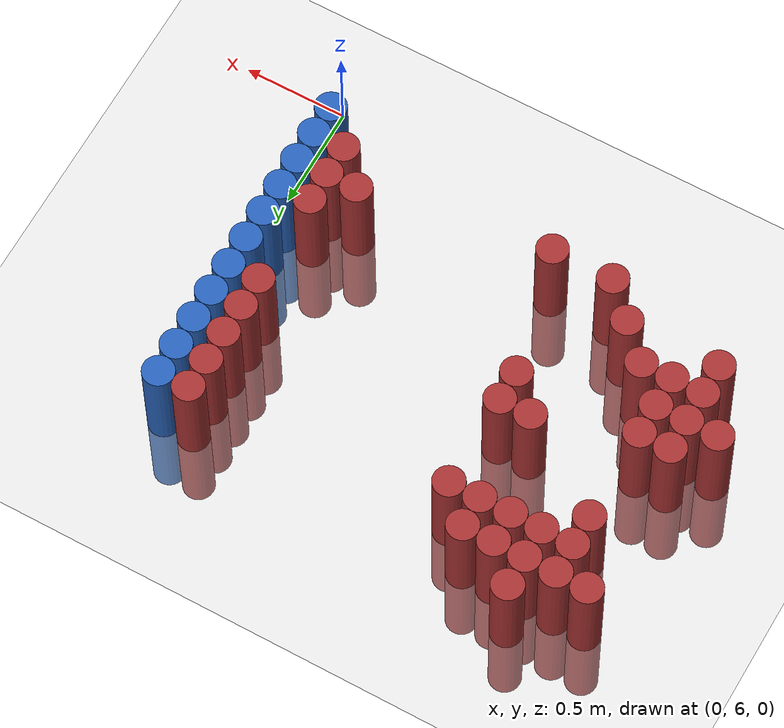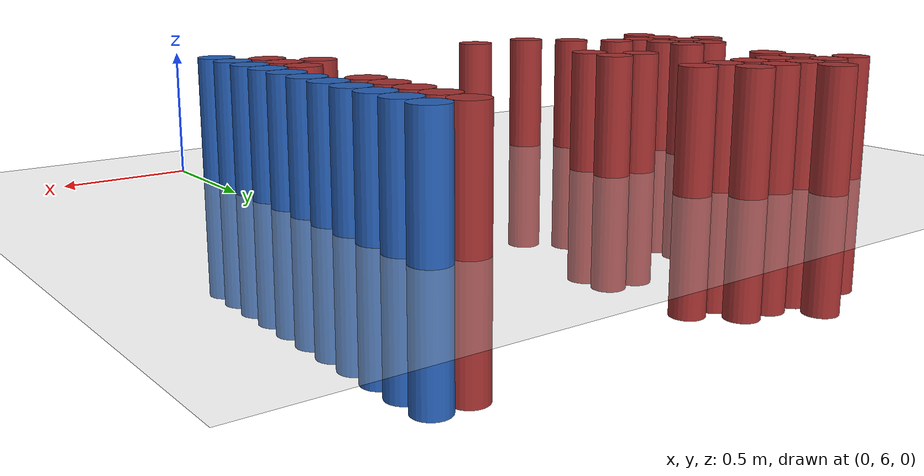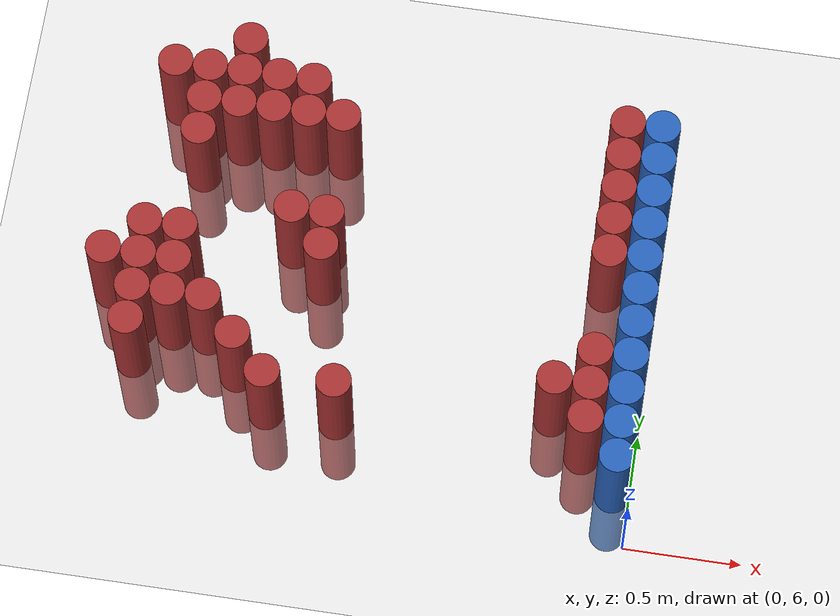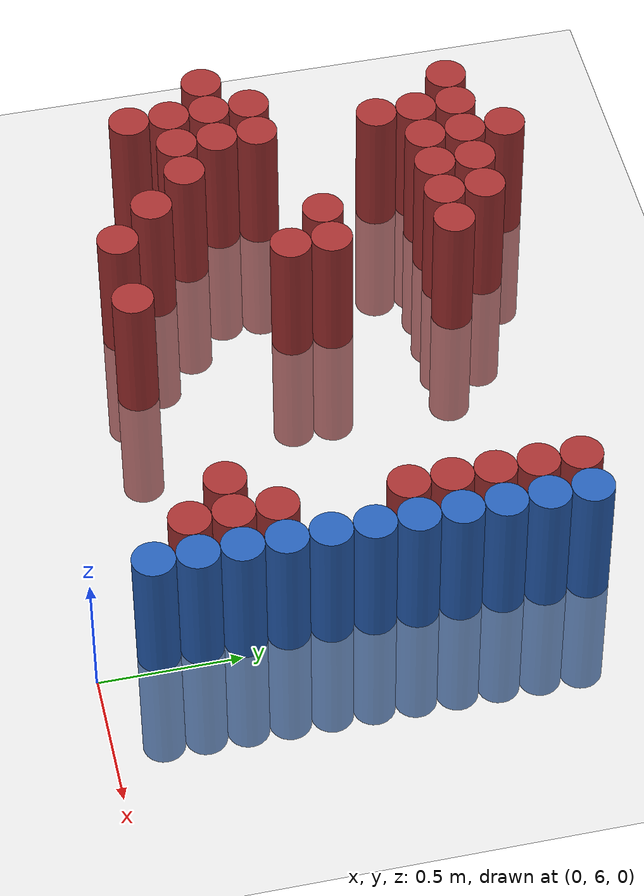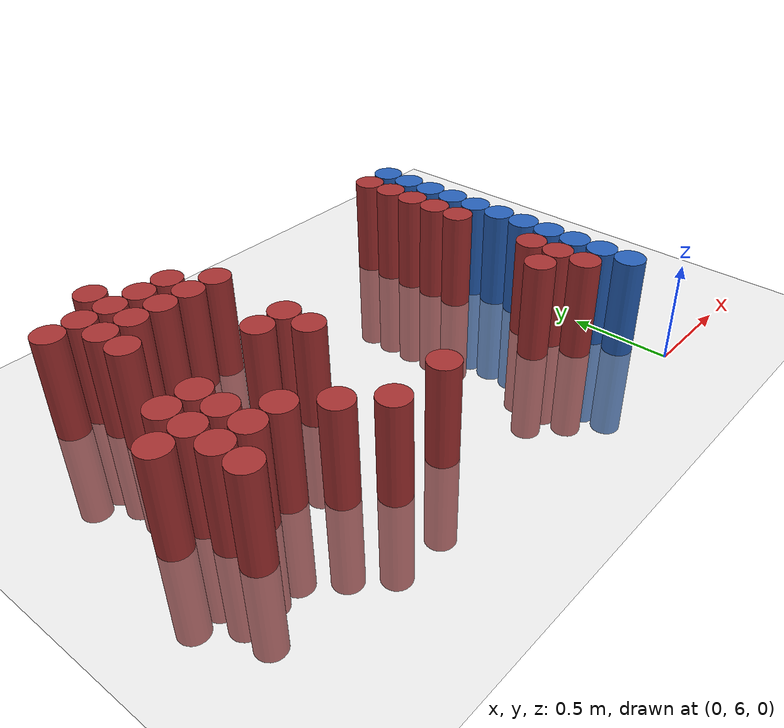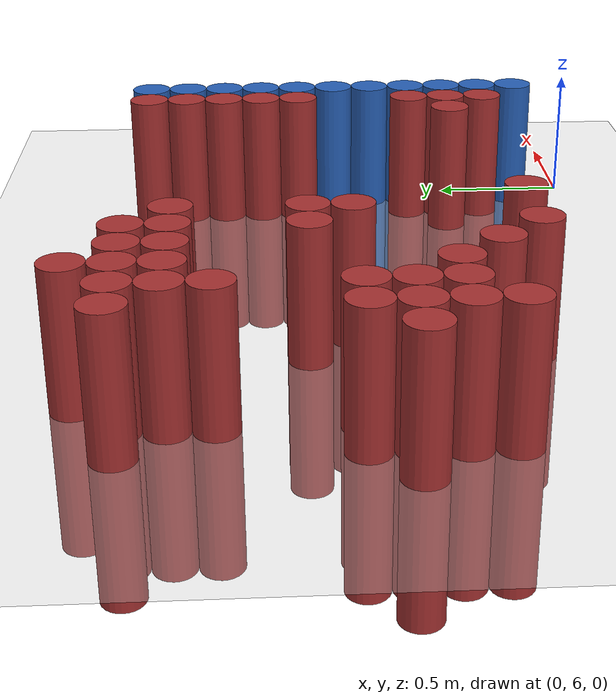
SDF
<sdf version="1.6">
 <world name="default">
  <model name="ground_plane">
   <static>1</static>
   <link name="link">
    <collision name="collision">
     <geometry><plane><normal>0 0 1</normal><size>100 100</size></plane></geometry>
     <surface><friction><ode><mu>100</mu><mu2>50</mu2></ode></friction></surface>
    </collision>
    <visual name="visual">
     <cast_shadows>0</cast_shadows>
     <geometry><plane><normal>0 0 1</normal><size>100 100</size></plane></geometry>
     <material>
      <script><uri>file://media/materials/scripts/gazebo.material</uri><name>Gazebo/Grey</name></script>
     </material>
    </visual>
   </link>
  </model>
  <model name="unit_cylinder_224">
   <static>1</static>
   <pose>-2.325000 6.825000 0.000000 0.000000 0.000000 0.000000</pose>
   <link name="link">
    <inertial>
     <mass>1</mass>
     <inertia><ixx>0.145833</ixx><ixy>0</ixy><ixz>0</ixz><iyy>0.145833</iyy><iyz>0</iyz><izz>0.125</izz></inertia>
    </inertial>
    <collision name="collision">
     <geometry><cylinder><radius>0.075000</radius><length>1</length></cylinder></geometry>
    </collision>
    <visual name="visual">
     <geometry><cylinder><radius>0.075000</radius><length>1</length></cylinder></geometry>
     <material>
      <ambient>0.648000 0.192000 0.192000 1</ambient>
      <diffuse>0.648000 0.192000 0.192000 1</diffuse>
     </material>
     <material>
      <script><name>Gazebo/Grey</name><uri>file://media/materials/scripts/gazebo.material</uri></script>
     </material>
    </visual>
   </link>
  </model>
  <model name="unit_cylinder_225">
   <static>1</static>
   <pose>-2.175000 6.525000 0.000000 0.000000 0.000000 0.000000</pose>
   <link name="link">
    <inertial>
     <mass>1</mass>
     <inertia><ixx>0.145833</ixx><ixy>0</ixy><ixz>0</ixz><iyy>0.145833</iyy><iyz>0</iyz><izz>0.125</izz></inertia>
    </inertial>
    <collision name="collision">
     <geometry><cylinder><radius>0.075000</radius><length>1</length></cylinder></geometry>
    </collision>
    <visual name="visual">
     <geometry><cylinder><radius>0.075000</radius><length>1</length></cylinder></geometry>
     <material>
      <ambient>0.648000 0.192000 0.192000 1</ambient>
      <diffuse>0.648000 0.192000 0.192000 1</diffuse>
     </material>
     <material>
      <script><name>Gazebo/Grey</name><uri>file://media/materials/scripts/gazebo.material</uri></script>
     </material>
    </visual>
   </link>
  </model>
  <model name="unit_cylinder_226">
   <static>1</static>
   <pose>-2.175000 6.675000 0.000000 0.000000 0.000000 0.000000</pose>
   <link name="link">
    <inertial>
     <mass>1</mass>
     <inertia><ixx>0.145833</ixx><ixy>0</ixy><ixz>0</ixz><iyy>0.145833</iyy><iyz>0</iyz><izz>0.125</izz></inertia>
    </inertial>
    <collision name="collision">
     <geometry><cylinder><radius>0.075000</radius><length>1</length></cylinder></geometry>
    </collision>
    <visual name="visual">
     <geometry><cylinder><radius>0.075000</radius><length>1</length></cylinder></geometry>
     <material>
      <ambient>0.648000 0.192000 0.192000 1</ambient>
      <diffuse>0.648000 0.192000 0.192000 1</diffuse>
     </material>
     <material>
      <script><name>Gazebo/Grey</name><uri>file://media/materials/scripts/gazebo.material</uri></script>
     </material>
    </visual>
   </link>
  </model>
  <model name="unit_cylinder_227">
   <static>1</static>
   <pose>-2.175000 6.825000 0.000000 0.000000 0.000000 0.000000</pose>
   <link name="link">
    <inertial>
     <mass>1</mass>
     <inertia><ixx>0.145833</ixx><ixy>0</ixy><ixz>0</ixz><iyy>0.145833</iyy><iyz>0</iyz><izz>0.125</izz></inertia>
    </inertial>
    <collision name="collision">
     <geometry><cylinder><radius>0.075000</radius><length>1</length></cylinder></geometry>
    </collision>
    <visual name="visual">
     <geometry><cylinder><radius>0.075000</radius><length>1</length></cylinder></geometry>
     <material>
      <ambient>0.648000 0.192000 0.192000 1</ambient>
      <diffuse>0.648000 0.192000 0.192000 1</diffuse>
     </material>
     <material>
      <script><name>Gazebo/Grey</name><uri>file://media/materials/scripts/gazebo.material</uri></script>
     </material>
    </visual>
   </link>
  </model>
  <model name="unit_cylinder_228">
   <static>1</static>
   <pose>-2.175000 6.975000 0.000000 0.000000 0.000000 0.000000</pose>
   <link name="link">
    <inertial>
     <mass>1</mass>
     <inertia><ixx>0.145833</ixx><ixy>0</ixy><ixz>0</ixz><iyy>0.145833</iyy><iyz>0</iyz><izz>0.125</izz></inertia>
    </inertial>
    <collision name="collision">
     <geometry><cylinder><radius>0.075000</radius><length>1</length></cylinder></geometry>
    </collision>
    <visual name="visual">
     <geometry><cylinder><radius>0.075000</radius><length>1</length></cylinder></geometry>
     <material>
      <ambient>0.648000 0.192000 0.192000 1</ambient>
      <diffuse>0.648000 0.192000 0.192000 1</diffuse>
     </material>
     <material>
      <script><name>Gazebo/Grey</name><uri>file://media/materials/scripts/gazebo.material</uri></script>
     </material>
    </visual>
   </link>
  </model>
  <model name="unit_cylinder_229">
   <static>1</static>
   <pose>-2.175000 7.725000 0.000000 0.000000 0.000000 0.000000</pose>
   <link name="link">
    <inertial>
     <mass>1</mass>
     <inertia><ixx>0.145833</ixx><ixy>0</ixy><ixz>0</ixz><iyy>0.145833</iyy><iyz>0</iyz><izz>0.125</izz></inertia>
    </inertial>
    <collision name="collision">
     <geometry><cylinder><radius>0.075000</radius><length>1</length></cylinder></geometry>
    </collision>
    <visual name="visual">
     <geometry><cylinder><radius>0.075000</radius><length>1</length></cylinder></geometry>
     <material>
      <ambient>0.648000 0.192000 0.192000 1</ambient>
      <diffuse>0.648000 0.192000 0.192000 1</diffuse>
     </material>
     <material>
      <script><name>Gazebo/Grey</name><uri>file://media/materials/scripts/gazebo.material</uri></script>
     </material>
    </visual>
   </link>
  </model>
  <model name="unit_cylinder_230">
   <static>1</static>
   <pose>-2.025000 6.675000 0.000000 0.000000 0.000000 0.000000</pose>
   <link name="link">
    <inertial>
     <mass>1</mass>
     <inertia><ixx>0.145833</ixx><ixy>0</ixy><ixz>0</ixz><iyy>0.145833</iyy><iyz>0</iyz><izz>0.125</izz></inertia>
    </inertial>
    <collision name="collision">
     <geometry><cylinder><radius>0.075000</radius><length>1</length></cylinder></geometry>
    </collision>
    <visual name="visual">
     <geometry><cylinder><radius>0.075000</radius><length>1</length></cylinder></geometry>
     <material>
      <ambient>0.648000 0.192000 0.192000 1</ambient>
      <diffuse>0.648000 0.192000 0.192000 1</diffuse>
     </material>
     <material>
      <script><name>Gazebo/Grey</name><uri>file://media/materials/scripts/gazebo.material</uri></script>
     </material>
    </visual>
   </link>
  </model>
  <model name="unit_cylinder_231">
   <static>1</static>
   <pose>-2.025000 6.825000 0.000000 0.000000 0.000000 0.000000</pose>
   <link name="link">
    <inertial>
     <mass>1</mass>
     <inertia><ixx>0.145833</ixx><ixy>0</ixy><ixz>0</ixz><iyy>0.145833</iyy><iyz>0</iyz><izz>0.125</izz></inertia>
    </inertial>
    <collision name="collision">
     <geometry><cylinder><radius>0.075000</radius><length>1</length></cylinder></geometry>
    </collision>
    <visual name="visual">
     <geometry><cylinder><radius>0.075000</radius><length>1</length></cylinder></geometry>
     <material>
      <ambient>0.648000 0.192000 0.192000 1</ambient>
      <diffuse>0.648000 0.192000 0.192000 1</diffuse>
     </material>
     <material>
      <script><name>Gazebo/Grey</name><uri>file://media/materials/scripts/gazebo.material</uri></script>
     </material>
    </visual>
   </link>
  </model>
  <model name="unit_cylinder_232">
   <static>1</static>
   <pose>-2.025000 6.975000 0.000000 0.000000 0.000000 0.000000</pose>
   <link name="link">
    <inertial>
     <mass>1</mass>
     <inertia><ixx>0.145833</ixx><ixy>0</ixy><ixz>0</ixz><iyy>0.145833</iyy><iyz>0</iyz><izz>0.125</izz></inertia>
    </inertial>
    <collision name="collision">
     <geometry><cylinder><radius>0.075000</radius><length>1</length></cylinder></geometry>
    </collision>
    <visual name="visual">
     <geometry><cylinder><radius>0.075000</radius><length>1</length></cylinder></geometry>
     <material>
      <ambient>0.648000 0.192000 0.192000 1</ambient>
      <diffuse>0.648000 0.192000 0.192000 1</diffuse>
     </material>
     <material>
      <script><name>Gazebo/Grey</name><uri>file://media/materials/scripts/gazebo.material</uri></script>
     </material>
    </visual>
   </link>
  </model>
  <model name="unit_cylinder_233">
   <static>1</static>
   <pose>-2.025000 7.425000 0.000000 0.000000 0.000000 0.000000</pose>
   <link name="link">
    <inertial>
     <mass>1</mass>
     <inertia><ixx>0.145833</ixx><ixy>0</ixy><ixz>0</ixz><iyy>0.145833</iyy><iyz>0</iyz><izz>0.125</izz></inertia>
    </inertial>
    <collision name="collision">
     <geometry><cylinder><radius>0.075000</radius><length>1</length></cylinder></geometry>
    </collision>
    <visual name="visual">
     <geometry><cylinder><radius>0.075000</radius><length>1</length></cylinder></geometry>
     <material>
      <ambient>0.648000 0.192000 0.192000 1</ambient>
      <diffuse>0.648000 0.192000 0.192000 1</diffuse>
     </material>
     <material>
      <script><name>Gazebo/Grey</name><uri>file://media/materials/scripts/gazebo.material</uri></script>
     </material>
    </visual>
   </link>
  </model>
  <model name="unit_cylinder_234">
   <static>1</static>
   <pose>-2.025000 7.575000 0.000000 0.000000 0.000000 0.000000</pose>
   <link name="link">
    <inertial>
     <mass>1</mass>
     <inertia><ixx>0.145833</ixx><ixy>0</ixy><ixz>0</ixz><iyy>0.145833</iyy><iyz>0</iyz><izz>0.125</izz></inertia>
    </inertial>
    <collision name="collision">
     <geometry><cylinder><radius>0.075000</radius><length>1</length></cylinder></geometry>
    </collision>
    <visual name="visual">
     <geometry><cylinder><radius>0.075000</radius><length>1</length></cylinder></geometry>
     <material>
      <ambient>0.648000 0.192000 0.192000 1</ambient>
      <diffuse>0.648000 0.192000 0.192000 1</diffuse>
     </material>
     <material>
      <script><name>Gazebo/Grey</name><uri>file://media/materials/scripts/gazebo.material</uri></script>
     </material>
    </visual>
   </link>
  </model>
  <model name="unit_cylinder_235">
   <static>1</static>
   <pose>-2.025000 7.725000 0.000000 0.000000 0.000000 0.000000</pose>
   <link name="link">
    <inertial>
     <mass>1</mass>
     <inertia><ixx>0.145833</ixx><ixy>0</ixy><ixz>0</ixz><iyy>0.145833</iyy><iyz>0</iyz><izz>0.125</izz></inertia>
    </inertial>
    <collision name="collision">
     <geometry><cylinder><radius>0.075000</radius><length>1</length></cylinder></geometry>
    </collision>
    <visual name="visual">
     <geometry><cylinder><radius>0.075000</radius><length>1</length></cylinder></geometry>
     <material>
      <ambient>0.648000 0.192000 0.192000 1</ambient>
      <diffuse>0.648000 0.192000 0.192000 1</diffuse>
     </material>
     <material>
      <script><name>Gazebo/Grey</name><uri>file://media/materials/scripts/gazebo.material</uri></script>
     </material>
    </visual>
   </link>
  </model>
  <model name="unit_cylinder_236">
   <static>1</static>
   <pose>-1.875000 6.675000 0.000000 0.000000 0.000000 0.000000</pose>
   <link name="link">
    <inertial>
     <mass>1</mass>
     <inertia><ixx>0.145833</ixx><ixy>0</ixy><ixz>0</ixz><iyy>0.145833</iyy><iyz>0</iyz><izz>0.125</izz></inertia>
    </inertial>
    <collision name="collision">
     <geometry><cylinder><radius>0.075000</radius><length>1</length></cylinder></geometry>
    </collision>
    <visual name="visual">
     <geometry><cylinder><radius>0.075000</radius><length>1</length></cylinder></geometry>
     <material>
      <ambient>0.648000 0.192000 0.192000 1</ambient>
      <diffuse>0.648000 0.192000 0.192000 1</diffuse>
     </material>
     <material>
      <script><name>Gazebo/Grey</name><uri>file://media/materials/scripts/gazebo.material</uri></script>
     </material>
    </visual>
   </link>
  </model>
  <model name="unit_cylinder_237">
   <static>1</static>
   <pose>-1.875000 7.575000 0.000000 0.000000 0.000000 0.000000</pose>
   <link name="link">
    <inertial>
     <mass>1</mass>
     <inertia><ixx>0.145833</ixx><ixy>0</ixy><ixz>0</ixz><iyy>0.145833</iyy><iyz>0</iyz><izz>0.125</izz></inertia>
    </inertial>
    <collision name="collision">
     <geometry><cylinder><radius>0.075000</radius><length>1</length></cylinder></geometry>
    </collision>
    <visual name="visual">
     <geometry><cylinder><radius>0.075000</radius><length>1</length></cylinder></geometry>
     <material>
      <ambient>0.648000 0.192000 0.192000 1</ambient>
      <diffuse>0.648000 0.192000 0.192000 1</diffuse>
     </material>
     <material>
      <script><name>Gazebo/Grey</name><uri>file://media/materials/scripts/gazebo.material</uri></script>
     </material>
    </visual>
   </link>
  </model>
  <model name="unit_cylinder_238">
   <static>1</static>
   <pose>-1.875000 7.725000 0.000000 0.000000 0.000000 0.000000</pose>
   <link name="link">
    <inertial>
     <mass>1</mass>
     <inertia><ixx>0.145833</ixx><ixy>0</ixy><ixz>0</ixz><iyy>0.145833</iyy><iyz>0</iyz><izz>0.125</izz></inertia>
    </inertial>
    <collision name="collision">
     <geometry><cylinder><radius>0.075000</radius><length>1</length></cylinder></geometry>
    </collision>
    <visual name="visual">
     <geometry><cylinder><radius>0.075000</radius><length>1</length></cylinder></geometry>
     <material>
      <ambient>0.648000 0.192000 0.192000 1</ambient>
      <diffuse>0.648000 0.192000 0.192000 1</diffuse>
     </material>
     <material>
      <script><name>Gazebo/Grey</name><uri>file://media/materials/scripts/gazebo.material</uri></script>
     </material>
    </visual>
   </link>
  </model>
  <model name="unit_cylinder_239">
   <static>1</static>
   <pose>-1.875000 7.875000 0.000000 0.000000 0.000000 0.000000</pose>
   <link name="link">
    <inertial>
     <mass>1</mass>
     <inertia><ixx>0.145833</ixx><ixy>0</ixy><ixz>0</ixz><iyy>0.145833</iyy><iyz>0</iyz><izz>0.125</izz></inertia>
    </inertial>
    <collision name="collision">
     <geometry><cylinder><radius>0.075000</radius><length>1</length></cylinder></geometry>
    </collision>
    <visual name="visual">
     <geometry><cylinder><radius>0.075000</radius><length>1</length></cylinder></geometry>
     <material>
      <ambient>0.648000 0.192000 0.192000 1</ambient>
      <diffuse>0.648000 0.192000 0.192000 1</diffuse>
     </material>
     <material>
      <script><name>Gazebo/Grey</name><uri>file://media/materials/scripts/gazebo.material</uri></script>
     </material>
    </visual>
   </link>
  </model>
  <model name="unit_cylinder_240">
   <static>1</static>
   <pose>-1.725000 6.525000 0.000000 0.000000 0.000000 0.000000</pose>
   <link name="link">
    <inertial>
     <mass>1</mass>
     <inertia><ixx>0.145833</ixx><ixy>0</ixy><ixz>0</ixz><iyy>0.145833</iyy><iyz>0</iyz><izz>0.125</izz></inertia>
    </inertial>
    <collision name="collision">
     <geometry><cylinder><radius>0.075000</radius><length>1</length></cylinder></geometry>
    </collision>
    <visual name="visual">
     <geometry><cylinder><radius>0.075000</radius><length>1</length></cylinder></geometry>
     <material>
      <ambient>0.648000 0.192000 0.192000 1</ambient>
      <diffuse>0.648000 0.192000 0.192000 1</diffuse>
     </material>
     <material>
      <script><name>Gazebo/Grey</name><uri>file://media/materials/scripts/gazebo.material</uri></script>
     </material>
    </visual>
   </link>
  </model>
  <model name="unit_cylinder_241">
   <static>1</static>
   <pose>-1.725000 7.575000 0.000000 0.000000 0.000000 0.000000</pose>
   <link name="link">
    <inertial>
     <mass>1</mass>
     <inertia><ixx>0.145833</ixx><ixy>0</ixy><ixz>0</ixz><iyy>0.145833</iyy><iyz>0</iyz><izz>0.125</izz></inertia>
    </inertial>
    <collision name="collision">
     <geometry><cylinder><radius>0.075000</radius><length>1</length></cylinder></geometry>
    </collision>
    <visual name="visual">
     <geometry><cylinder><radius>0.075000</radius><length>1</length></cylinder></geometry>
     <material>
      <ambient>0.648000 0.192000 0.192000 1</ambient>
      <diffuse>0.648000 0.192000 0.192000 1</diffuse>
     </material>
     <material>
      <script><name>Gazebo/Grey</name><uri>file://media/materials/scripts/gazebo.material</uri></script>
     </material>
    </visual>
   </link>
  </model>
  <model name="unit_cylinder_242">
   <static>1</static>
   <pose>-1.725000 7.725000 0.000000 0.000000 0.000000 0.000000</pose>
   <link name="link">
    <inertial>
     <mass>1</mass>
     <inertia><ixx>0.145833</ixx><ixy>0</ixy><ixz>0</ixz><iyy>0.145833</iyy><iyz>0</iyz><izz>0.125</izz></inertia>
    </inertial>
    <collision name="collision">
     <geometry><cylinder><radius>0.075000</radius><length>1</length></cylinder></geometry>
    </collision>
    <visual name="visual">
     <geometry><cylinder><radius>0.075000</radius><length>1</length></cylinder></geometry>
     <material>
      <ambient>0.648000 0.192000 0.192000 1</ambient>
      <diffuse>0.648000 0.192000 0.192000 1</diffuse>
     </material>
     <material>
      <script><name>Gazebo/Grey</name><uri>file://media/materials/scripts/gazebo.material</uri></script>
     </material>
    </visual>
   </link>
  </model>
  <model name="unit_cylinder_244">
   <static>1</static>
   <pose>-1.575000 6.375000 0.000000 0.000000 0.000000 0.000000</pose>
   <link name="link">
    <inertial>
     <mass>1</mass>
     <inertia><ixx>0.145833</ixx><ixy>0</ixy><ixz>0</ixz><iyy>0.145833</iyy><iyz>0</iyz><izz>0.125</izz></inertia>
    </inertial>
    <collision name="collision">
     <geometry><cylinder><radius>0.075000</radius><length>1</length></cylinder></geometry>
    </collision>
    <visual name="visual">
     <geometry><cylinder><radius>0.075000</radius><length>1</length></cylinder></geometry>
     <material>
      <ambient>0.648000 0.192000 0.192000 1</ambient>
      <diffuse>0.648000 0.192000 0.192000 1</diffuse>
     </material>
     <material>
      <script><name>Gazebo/Grey</name><uri>file://media/materials/scripts/gazebo.material</uri></script>
     </material>
    </visual>
   </link>
  </model>
  <model name="unit_cylinder_245">
   <static>1</static>
   <pose>-1.575000 7.125000 0.000000 0.000000 0.000000 0.000000</pose>
   <link name="link">
    <inertial>
     <mass>1</mass>
     <inertia><ixx>0.145833</ixx><ixy>0</ixy><ixz>0</ixz><iyy>0.145833</iyy><iyz>0</iyz><izz>0.125</izz></inertia>
    </inertial>
    <collision name="collision">
     <geometry><cylinder><radius>0.075000</radius><length>1</length></cylinder></geometry>
    </collision>
    <visual name="visual">
     <geometry><cylinder><radius>0.075000</radius><length>1</length></cylinder></geometry>
     <material>
      <ambient>0.648000 0.192000 0.192000 1</ambient>
      <diffuse>0.648000 0.192000 0.192000 1</diffuse>
     </material>
     <material>
      <script><name>Gazebo/Grey</name><uri>file://media/materials/scripts/gazebo.material</uri></script>
     </material>
    </visual>
   </link>
  </model>
  <model name="unit_cylinder_246">
   <static>1</static>
   <pose>-1.575000 7.575000 0.000000 0.000000 0.000000 0.000000</pose>
   <link name="link">
    <inertial>
     <mass>1</mass>
     <inertia><ixx>0.145833</ixx><ixy>0</ixy><ixz>0</ixz><iyy>0.145833</iyy><iyz>0</iyz><izz>0.125</izz></inertia>
    </inertial>
    <collision name="collision">
     <geometry><cylinder><radius>0.075000</radius><length>1</length></cylinder></geometry>
    </collision>
    <visual name="visual">
     <geometry><cylinder><radius>0.075000</radius><length>1</length></cylinder></geometry>
     <material>
      <ambient>0.648000 0.192000 0.192000 1</ambient>
      <diffuse>0.648000 0.192000 0.192000 1</diffuse>
     </material>
     <material>
      <script><name>Gazebo/Grey</name><uri>file://media/materials/scripts/gazebo.material</uri></script>
     </material>
    </visual>
   </link>
  </model>
  <model name="unit_cylinder_247">
   <static>1</static>
   <pose>-1.575000 7.725000 0.000000 0.000000 0.000000 0.000000</pose>
   <link name="link">
    <inertial>
     <mass>1</mass>
     <inertia><ixx>0.145833</ixx><ixy>0</ixy><ixz>0</ixz><iyy>0.145833</iyy><iyz>0</iyz><izz>0.125</izz></inertia>
    </inertial>
    <collision name="collision">
     <geometry><cylinder><radius>0.075000</radius><length>1</length></cylinder></geometry>
    </collision>
    <visual name="visual">
     <geometry><cylinder><radius>0.075000</radius><length>1</length></cylinder></geometry>
     <material>
      <ambient>0.648000 0.192000 0.192000 1</ambient>
      <diffuse>0.648000 0.192000 0.192000 1</diffuse>
     </material>
     <material>
      <script><name>Gazebo/Grey</name><uri>file://media/materials/scripts/gazebo.material</uri></script>
     </material>
    </visual>
   </link>
  </model>
  <model name="unit_cylinder_252">
   <static>1</static>
   <pose>-1.425000 6.975000 0.000000 0.000000 0.000000 0.000000</pose>
   <link name="link">
    <inertial>
     <mass>1</mass>
     <inertia><ixx>0.145833</ixx><ixy>0</ixy><ixz>0</ixz><iyy>0.145833</iyy><iyz>0</iyz><izz>0.125</izz></inertia>
    </inertial>
    <collision name="collision">
     <geometry><cylinder><radius>0.075000</radius><length>1</length></cylinder></geometry>
    </collision>
    <visual name="visual">
     <geometry><cylinder><radius>0.075000</radius><length>1</length></cylinder></geometry>
     <material>
      <ambient>0.648000 0.192000 0.192000 1</ambient>
      <diffuse>0.648000 0.192000 0.192000 1</diffuse>
     </material>
     <material>
      <script><name>Gazebo/Grey</name><uri>file://media/materials/scripts/gazebo.material</uri></script>
     </material>
    </visual>
   </link>
  </model>
  <model name="unit_cylinder_253">
   <static>1</static>
   <pose>-1.425000 7.125000 0.000000 0.000000 0.000000 0.000000</pose>
   <link name="link">
    <inertial>
     <mass>1</mass>
     <inertia><ixx>0.145833</ixx><ixy>0</ixy><ixz>0</ixz><iyy>0.145833</iyy><iyz>0</iyz><izz>0.125</izz></inertia>
    </inertial>
    <collision name="collision">
     <geometry><cylinder><radius>0.075000</radius><length>1</length></cylinder></geometry>
    </collision>
    <visual name="visual">
     <geometry><cylinder><radius>0.075000</radius><length>1</length></cylinder></geometry>
     <material>
      <ambient>0.648000 0.192000 0.192000 1</ambient>
      <diffuse>0.648000 0.192000 0.192000 1</diffuse>
     </material>
     <material>
      <script><name>Gazebo/Grey</name><uri>file://media/materials/scripts/gazebo.material</uri></script>
     </material>
    </visual>
   </link>
  </model>
  <model name="unit_cylinder_254">
   <static>1</static>
   <pose>-1.425000 7.575000 0.000000 0.000000 0.000000 0.000000</pose>
   <link name="link">
    <inertial>
     <mass>1</mass>
     <inertia><ixx>0.145833</ixx><ixy>0</ixy><ixz>0</ixz><iyy>0.145833</iyy><iyz>0</iyz><izz>0.125</izz></inertia>
    </inertial>
    <collision name="collision">
     <geometry><cylinder><radius>0.075000</radius><length>1</length></cylinder></geometry>
    </collision>
    <visual name="visual">
     <geometry><cylinder><radius>0.075000</radius><length>1</length></cylinder></geometry>
     <material>
      <ambient>0.648000 0.192000 0.192000 1</ambient>
      <diffuse>0.648000 0.192000 0.192000 1</diffuse>
     </material>
     <material>
      <script><name>Gazebo/Grey</name><uri>file://media/materials/scripts/gazebo.material</uri></script>
     </material>
    </visual>
   </link>
  </model>
  <model name="unit_cylinder_259">
   <static>1</static>
   <pose>-1.275000 6.375000 0.000000 0.000000 0.000000 0.000000</pose>
   <link name="link">
    <inertial>
     <mass>1</mass>
     <inertia><ixx>0.145833</ixx><ixy>0</ixy><ixz>0</ixz><iyy>0.145833</iyy><iyz>0</iyz><izz>0.125</izz></inertia>
    </inertial>
    <collision name="collision">
     <geometry><cylinder><radius>0.075000</radius><length>1</length></cylinder></geometry>
    </collision>
    <visual name="visual">
     <geometry><cylinder><radius>0.075000</radius><length>1</length></cylinder></geometry>
     <material>
      <ambient>0.648000 0.192000 0.192000 1</ambient>
      <diffuse>0.648000 0.192000 0.192000 1</diffuse>
     </material>
     <material>
      <script><name>Gazebo/Grey</name><uri>file://media/materials/scripts/gazebo.material</uri></script>
     </material>
    </visual>
   </link>
  </model>
  <model name="unit_cylinder_275">
   <static>1</static>
   <pose>-0.375000 6.525000 0.000000 0.000000 0.000000 0.000000</pose>
   <link name="link">
    <inertial>
     <mass>1</mass>
     <inertia><ixx>0.145833</ixx><ixy>0</ixy><ixz>0</ixz><iyy>0.145833</iyy><iyz>0</iyz><izz>0.125</izz></inertia>
    </inertial>
    <collision name="collision">
     <geometry><cylinder><radius>0.075000</radius><length>1</length></cylinder></geometry>
    </collision>
    <visual name="visual">
     <geometry><cylinder><radius>0.075000</radius><length>1</length></cylinder></geometry>
     <material>
      <ambient>0.648000 0.192000 0.192000 1</ambient>
      <diffuse>0.648000 0.192000 0.192000 1</diffuse>
     </material>
     <material>
      <script><name>Gazebo/Grey</name><uri>file://media/materials/scripts/gazebo.material</uri></script>
     </material>
    </visual>
   </link>
  </model>
  <model name="unit_cylinder_284">
   <static>1</static>
   <pose>-0.225000 6.375000 0.000000 0.000000 0.000000 0.000000</pose>
   <link name="link">
    <inertial>
     <mass>1</mass>
     <inertia><ixx>0.145833</ixx><ixy>0</ixy><ixz>0</ixz><iyy>0.145833</iyy><iyz>0</iyz><izz>0.125</izz></inertia>
    </inertial>
    <collision name="collision">
     <geometry><cylinder><radius>0.075000</radius><length>1</length></cylinder></geometry>
    </collision>
    <visual name="visual">
     <geometry><cylinder><radius>0.075000</radius><length>1</length></cylinder></geometry>
     <material>
      <ambient>0.648000 0.192000 0.192000 1</ambient>
      <diffuse>0.648000 0.192000 0.192000 1</diffuse>
     </material>
     <material>
      <script><name>Gazebo/Grey</name><uri>file://media/materials/scripts/gazebo.material</uri></script>
     </material>
    </visual>
   </link>
  </model>
  <model name="unit_cylinder_285">
   <static>1</static>
   <pose>-0.225000 6.525000 0.000000 0.000000 0.000000 0.000000</pose>
   <link name="link">
    <inertial>
     <mass>1</mass>
     <inertia><ixx>0.145833</ixx><ixy>0</ixy><ixz>0</ixz><iyy>0.145833</iyy><iyz>0</iyz><izz>0.125</izz></inertia>
    </inertial>
    <collision name="collision">
     <geometry><cylinder><radius>0.075000</radius><length>1</length></cylinder></geometry>
    </collision>
    <visual name="visual">
     <geometry><cylinder><radius>0.075000</radius><length>1</length></cylinder></geometry>
     <material>
      <ambient>0.648000 0.192000 0.192000 1</ambient>
      <diffuse>0.648000 0.192000 0.192000 1</diffuse>
     </material>
     <material>
      <script><name>Gazebo/Grey</name><uri>file://media/materials/scripts/gazebo.material</uri></script>
     </material>
    </visual>
   </link>
  </model>
  <model name="unit_cylinder_286">
   <static>1</static>
   <pose>-0.225000 6.675000 0.000000 0.000000 0.000000 0.000000</pose>
   <link name="link">
    <inertial>
     <mass>1</mass>
     <inertia><ixx>0.145833</ixx><ixy>0</ixy><ixz>0</ixz><iyy>0.145833</iyy><iyz>0</iyz><izz>0.125</izz></inertia>
    </inertial>
    <collision name="collision">
     <geometry><cylinder><radius>0.075000</radius><length>1</length></cylinder></geometry>
    </collision>
    <visual name="visual">
     <geometry><cylinder><radius>0.075000</radius><length>1</length></cylinder></geometry>
     <material>
      <ambient>0.648000 0.192000 0.192000 1</ambient>
      <diffuse>0.648000 0.192000 0.192000 1</diffuse>
     </material>
     <material>
      <script><name>Gazebo/Grey</name><uri>file://media/materials/scripts/gazebo.material</uri></script>
     </material>
    </visual>
   </link>
  </model>
  <model name="unit_cylinder_287">
   <static>1</static>
   <pose>-0.225000 7.125000 0.000000 0.000000 0.000000 0.000000</pose>
   <link name="link">
    <inertial>
     <mass>1</mass>
     <inertia><ixx>0.145833</ixx><ixy>0</ixy><ixz>0</ixz><iyy>0.145833</iyy><iyz>0</iyz><izz>0.125</izz></inertia>
    </inertial>
    <collision name="collision">
     <geometry><cylinder><radius>0.075000</radius><length>1</length></cylinder></geometry>
    </collision>
    <visual name="visual">
     <geometry><cylinder><radius>0.075000</radius><length>1</length></cylinder></geometry>
     <material>
      <ambient>0.648000 0.192000 0.192000 1</ambient>
      <diffuse>0.648000 0.192000 0.192000 1</diffuse>
     </material>
     <material>
      <script><name>Gazebo/Grey</name><uri>file://media/materials/scripts/gazebo.material</uri></script>
     </material>
    </visual>
   </link>
  </model>
  <model name="unit_cylinder_288">
   <static>1</static>
   <pose>-0.225000 7.275000 0.000000 0.000000 0.000000 0.000000</pose>
   <link name="link">
    <inertial>
     <mass>1</mass>
     <inertia><ixx>0.145833</ixx><ixy>0</ixy><ixz>0</ixz><iyy>0.145833</iyy><iyz>0</iyz><izz>0.125</izz></inertia>
    </inertial>
    <collision name="collision">
     <geometry><cylinder><radius>0.075000</radius><length>1</length></cylinder></geometry>
    </collision>
    <visual name="visual">
     <geometry><cylinder><radius>0.075000</radius><length>1</length></cylinder></geometry>
     <material>
      <ambient>0.648000 0.192000 0.192000 1</ambient>
      <diffuse>0.648000 0.192000 0.192000 1</diffuse>
     </material>
     <material>
      <script><name>Gazebo/Grey</name><uri>file://media/materials/scripts/gazebo.material</uri></script>
     </material>
    </visual>
   </link>
  </model>
  <model name="unit_cylinder_289">
   <static>1</static>
   <pose>-0.225000 7.425000 0.000000 0.000000 0.000000 0.000000</pose>
   <link name="link">
    <inertial>
     <mass>1</mass>
     <inertia><ixx>0.145833</ixx><ixy>0</ixy><ixz>0</ixz><iyy>0.145833</iyy><iyz>0</iyz><izz>0.125</izz></inertia>
    </inertial>
    <collision name="collision">
     <geometry><cylinder><radius>0.075000</radius><length>1</length></cylinder></geometry>
    </collision>
    <visual name="visual">
     <geometry><cylinder><radius>0.075000</radius><length>1</length></cylinder></geometry>
     <material>
      <ambient>0.648000 0.192000 0.192000 1</ambient>
      <diffuse>0.648000 0.192000 0.192000 1</diffuse>
     </material>
     <material>
      <script><name>Gazebo/Grey</name><uri>file://media/materials/scripts/gazebo.material</uri></script>
     </material>
    </visual>
   </link>
  </model>
  <model name="unit_cylinder_290">
   <static>1</static>
   <pose>-0.225000 7.575000 0.000000 0.000000 0.000000 0.000000</pose>
   <link name="link">
    <inertial>
     <mass>1</mass>
     <inertia><ixx>0.145833</ixx><ixy>0</ixy><ixz>0</ixz><iyy>0.145833</iyy><iyz>0</iyz><izz>0.125</izz></inertia>
    </inertial>
    <collision name="collision">
     <geometry><cylinder><radius>0.075000</radius><length>1</length></cylinder></geometry>
    </collision>
    <visual name="visual">
     <geometry><cylinder><radius>0.075000</radius><length>1</length></cylinder></geometry>
     <material>
      <ambient>0.648000 0.192000 0.192000 1</ambient>
      <diffuse>0.648000 0.192000 0.192000 1</diffuse>
     </material>
     <material>
      <script><name>Gazebo/Grey</name><uri>file://media/materials/scripts/gazebo.material</uri></script>
     </material>
    </visual>
   </link>
  </model>
  <model name="unit_cylinder_291">
   <static>1</static>
   <pose>-0.225000 7.725000 0.000000 0.000000 0.000000 0.000000</pose>
   <link name="link">
    <inertial>
     <mass>1</mass>
     <inertia><ixx>0.145833</ixx><ixy>0</ixy><ixz>0</ixz><iyy>0.145833</iyy><iyz>0</iyz><izz>0.125</izz></inertia>
    </inertial>
    <collision name="collision">
     <geometry><cylinder><radius>0.075000</radius><length>1</length></cylinder></geometry>
    </collision>
    <visual name="visual">
     <geometry><cylinder><radius>0.075000</radius><length>1</length></cylinder></geometry>
     <material>
      <ambient>0.648000 0.192000 0.192000 1</ambient>
      <diffuse>0.648000 0.192000 0.192000 1</diffuse>
     </material>
     <material>
      <script><name>Gazebo/Grey</name><uri>file://media/materials/scripts/gazebo.material</uri></script>
     </material>
    </visual>
   </link>
  </model>
  <model name="unit_cylinder_307">
   <static>1</static>
   <pose>-0.075000 6.225000 0.000000 0.000000 0.000000 0.000000</pose>
   <link name="link">
    <inertial>
     <mass>1</mass>
     <inertia><ixx>0.145833</ixx><ixy>0</ixy><ixz>0</ixz><iyy>0.145833</iyy><iyz>0</iyz><izz>0.125</izz></inertia>
    </inertial>
    <collision name="collision">
     <geometry><cylinder><radius>0.075000</radius><length>1</length></cylinder></geometry>
    </collision>
    <visual name="visual">
     <geometry><cylinder><radius>0.075000</radius><length>1</length></cylinder></geometry>
     <material>
      <ambient>0.152000 0.379000 0.720000 1</ambient>
      <diffuse>0.152000 0.379000 0.720000 1</diffuse>
     </material>
     <material>
      <script><name>Gazebo/Grey</name><uri>file://media/materials/scripts/gazebo.material</uri></script>
     </material>
    </visual>
   </link>
  </model>
  <model name="unit_cylinder_308">
   <static>1</static>
   <pose>-0.075000 6.375000 0.000000 0.000000 0.000000 0.000000</pose>
   <link name="link">
    <inertial>
     <mass>1</mass>
     <inertia><ixx>0.145833</ixx><ixy>0</ixy><ixz>0</ixz><iyy>0.145833</iyy><iyz>0</iyz><izz>0.125</izz></inertia>
    </inertial>
    <collision name="collision">
     <geometry><cylinder><radius>0.075000</radius><length>1</length></cylinder></geometry>
    </collision>
    <visual name="visual">
     <geometry><cylinder><radius>0.075000</radius><length>1</length></cylinder></geometry>
     <material>
      <ambient>0.152000 0.379000 0.720000 1</ambient>
      <diffuse>0.152000 0.379000 0.720000 1</diffuse>
     </material>
     <material>
      <script><name>Gazebo/Grey</name><uri>file://media/materials/scripts/gazebo.material</uri></script>
     </material>
    </visual>
   </link>
  </model>
  <model name="unit_cylinder_309">
   <static>1</static>
   <pose>-0.075000 6.525000 0.000000 0.000000 0.000000 0.000000</pose>
   <link name="link">
    <inertial>
     <mass>1</mass>
     <inertia><ixx>0.145833</ixx><ixy>0</ixy><ixz>0</ixz><iyy>0.145833</iyy><iyz>0</iyz><izz>0.125</izz></inertia>
    </inertial>
    <collision name="collision">
     <geometry><cylinder><radius>0.075000</radius><length>1</length></cylinder></geometry>
    </collision>
    <visual name="visual">
     <geometry><cylinder><radius>0.075000</radius><length>1</length></cylinder></geometry>
     <material>
      <ambient>0.152000 0.379000 0.720000 1</ambient>
      <diffuse>0.152000 0.379000 0.720000 1</diffuse>
     </material>
     <material>
      <script><name>Gazebo/Grey</name><uri>file://media/materials/scripts/gazebo.material</uri></script>
     </material>
    </visual>
   </link>
  </model>
  <model name="unit_cylinder_310">
   <static>1</static>
   <pose>-0.075000 6.675000 0.000000 0.000000 0.000000 0.000000</pose>
   <link name="link">
    <inertial>
     <mass>1</mass>
     <inertia><ixx>0.145833</ixx><ixy>0</ixy><ixz>0</ixz><iyy>0.145833</iyy><iyz>0</iyz><izz>0.125</izz></inertia>
    </inertial>
    <collision name="collision">
     <geometry><cylinder><radius>0.075000</radius><length>1</length></cylinder></geometry>
    </collision>
    <visual name="visual">
     <geometry><cylinder><radius>0.075000</radius><length>1</length></cylinder></geometry>
     <material>
      <ambient>0.152000 0.379000 0.720000 1</ambient>
      <diffuse>0.152000 0.379000 0.720000 1</diffuse>
     </material>
     <material>
      <script><name>Gazebo/Grey</name><uri>file://media/materials/scripts/gazebo.material</uri></script>
     </material>
    </visual>
   </link>
  </model>
  <model name="unit_cylinder_311">
   <static>1</static>
   <pose>-0.075000 6.825000 0.000000 0.000000 0.000000 0.000000</pose>
   <link name="link">
    <inertial>
     <mass>1</mass>
     <inertia><ixx>0.145833</ixx><ixy>0</ixy><ixz>0</ixz><iyy>0.145833</iyy><iyz>0</iyz><izz>0.125</izz></inertia>
    </inertial>
    <collision name="collision">
     <geometry><cylinder><radius>0.075000</radius><length>1</length></cylinder></geometry>
    </collision>
    <visual name="visual">
     <geometry><cylinder><radius>0.075000</radius><length>1</length></cylinder></geometry>
     <material>
      <ambient>0.152000 0.379000 0.720000 1</ambient>
      <diffuse>0.152000 0.379000 0.720000 1</diffuse>
     </material>
     <material>
      <script><name>Gazebo/Grey</name><uri>file://media/materials/scripts/gazebo.material</uri></script>
     </material>
    </visual>
   </link>
  </model>
  <model name="unit_cylinder_312">
   <static>1</static>
   <pose>-0.075000 6.975000 0.000000 0.000000 0.000000 0.000000</pose>
   <link name="link">
    <inertial>
     <mass>1</mass>
     <inertia><ixx>0.145833</ixx><ixy>0</ixy><ixz>0</ixz><iyy>0.145833</iyy><iyz>0</iyz><izz>0.125</izz></inertia>
    </inertial>
    <collision name="collision">
     <geometry><cylinder><radius>0.075000</radius><length>1</length></cylinder></geometry>
    </collision>
    <visual name="visual">
     <geometry><cylinder><radius>0.075000</radius><length>1</length></cylinder></geometry>
     <material>
      <ambient>0.152000 0.379000 0.720000 1</ambient>
      <diffuse>0.152000 0.379000 0.720000 1</diffuse>
     </material>
     <material>
      <script><name>Gazebo/Grey</name><uri>file://media/materials/scripts/gazebo.material</uri></script>
     </material>
    </visual>
   </link>
  </model>
  <model name="unit_cylinder_313">
   <static>1</static>
   <pose>-0.075000 7.125000 0.000000 0.000000 0.000000 0.000000</pose>
   <link name="link">
    <inertial>
     <mass>1</mass>
     <inertia><ixx>0.145833</ixx><ixy>0</ixy><ixz>0</ixz><iyy>0.145833</iyy><iyz>0</iyz><izz>0.125</izz></inertia>
    </inertial>
    <collision name="collision">
     <geometry><cylinder><radius>0.075000</radius><length>1</length></cylinder></geometry>
    </collision>
    <visual name="visual">
     <geometry><cylinder><radius>0.075000</radius><length>1</length></cylinder></geometry>
     <material>
      <ambient>0.152000 0.379000 0.720000 1</ambient>
      <diffuse>0.152000 0.379000 0.720000 1</diffuse>
     </material>
     <material>
      <script><name>Gazebo/Grey</name><uri>file://media/materials/scripts/gazebo.material</uri></script>
     </material>
    </visual>
   </link>
  </model>
  <model name="unit_cylinder_314">
   <static>1</static>
   <pose>-0.075000 7.275000 0.000000 0.000000 0.000000 0.000000</pose>
   <link name="link">
    <inertial>
     <mass>1</mass>
     <inertia><ixx>0.145833</ixx><ixy>0</ixy><ixz>0</ixz><iyy>0.145833</iyy><iyz>0</iyz><izz>0.125</izz></inertia>
    </inertial>
    <collision name="collision">
     <geometry><cylinder><radius>0.075000</radius><length>1</length></cylinder></geometry>
    </collision>
    <visual name="visual">
     <geometry><cylinder><radius>0.075000</radius><length>1</length></cylinder></geometry>
     <material>
      <ambient>0.152000 0.379000 0.720000 1</ambient>
      <diffuse>0.152000 0.379000 0.720000 1</diffuse>
     </material>
     <material>
      <script><name>Gazebo/Grey</name><uri>file://media/materials/scripts/gazebo.material</uri></script>
     </material>
    </visual>
   </link>
  </model>
  <model name="unit_cylinder_315">
   <static>1</static>
   <pose>-0.075000 7.425000 0.000000 0.000000 0.000000 0.000000</pose>
   <link name="link">
    <inertial>
     <mass>1</mass>
     <inertia><ixx>0.145833</ixx><ixy>0</ixy><ixz>0</ixz><iyy>0.145833</iyy><iyz>0</iyz><izz>0.125</izz></inertia>
    </inertial>
    <collision name="collision">
     <geometry><cylinder><radius>0.075000</radius><length>1</length></cylinder></geometry>
    </collision>
    <visual name="visual">
     <geometry><cylinder><radius>0.075000</radius><length>1</length></cylinder></geometry>
     <material>
      <ambient>0.152000 0.379000 0.720000 1</ambient>
      <diffuse>0.152000 0.379000 0.720000 1</diffuse>
     </material>
     <material>
      <script><name>Gazebo/Grey</name><uri>file://media/materials/scripts/gazebo.material</uri></script>
     </material>
    </visual>
   </link>
  </model>
  <model name="unit_cylinder_316">
   <static>1</static>
   <pose>-0.075000 7.575000 0.000000 0.000000 0.000000 0.000000</pose>
   <link name="link">
    <inertial>
     <mass>1</mass>
     <inertia><ixx>0.145833</ixx><ixy>0</ixy><ixz>0</ixz><iyy>0.145833</iyy><iyz>0</iyz><izz>0.125</izz></inertia>
    </inertial>
    <collision name="collision">
     <geometry><cylinder><radius>0.075000</radius><length>1</length></cylinder></geometry>
    </collision>
    <visual name="visual">
     <geometry><cylinder><radius>0.075000</radius><length>1</length></cylinder></geometry>
     <material>
      <ambient>0.152000 0.379000 0.720000 1</ambient>
      <diffuse>0.152000 0.379000 0.720000 1</diffuse>
     </material>
     <material>
      <script><name>Gazebo/Grey</name><uri>file://media/materials/scripts/gazebo.material</uri></script>
     </material>
    </visual>
   </link>
  </model>
  <model name="unit_cylinder_317">
   <static>1</static>
   <pose>-0.075000 7.725000 0.000000 0.000000 0.000000 0.000000</pose>
   <link name="link">
    <inertial>
     <mass>1</mass>
     <inertia><ixx>0.145833</ixx><ixy>0</ixy><ixz>0</ixz><iyy>0.145833</iyy><iyz>0</iyz><izz>0.125</izz></inertia>
    </inertial>
    <collision name="collision">
     <geometry><cylinder><radius>0.075000</radius><length>1</length></cylinder></geometry>
    </collision>
    <visual name="visual">
     <geometry><cylinder><radius>0.075000</radius><length>1</length></cylinder></geometry>
     <material>
      <ambient>0.152000 0.379000 0.720000 1</ambient>
      <diffuse>0.152000 0.379000 0.720000 1</diffuse>
     </material>
     <material>
      <script><name>Gazebo/Grey</name><uri>file://media/materials/scripts/gazebo.material</uri></script>
     </material>
    </visual>
   </link>
  </model>
 </world>
</sdf>
